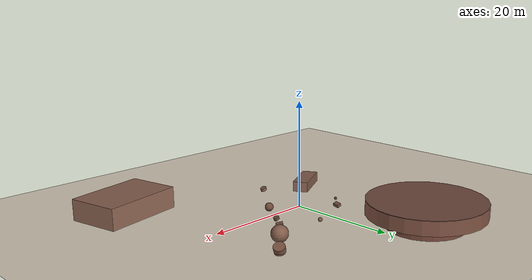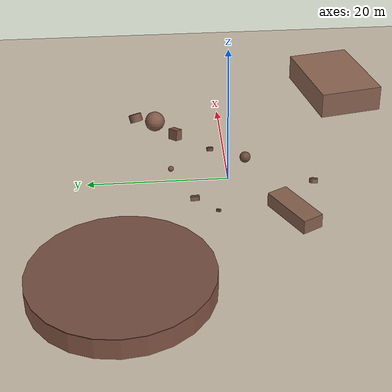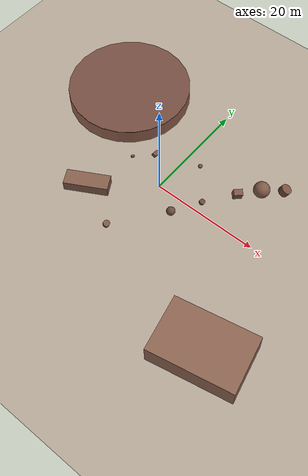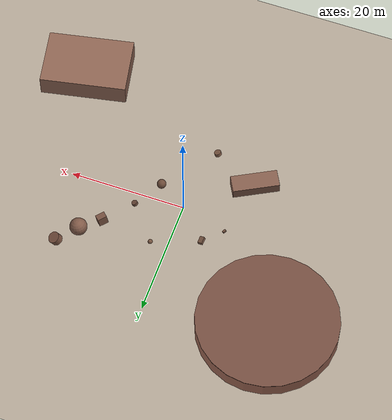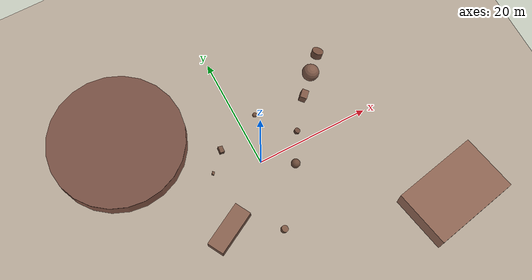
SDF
<?xml version="1.0" ?>
<sdf version="1.8">
  <world name="realistic_mars_terrain">

    <physics name="mars_physics" type="ignored">
      <max_step_size>0.001</max_step_size>
      <real_time_factor>1.0</real_time_factor>
    </physics>

    <plugin filename="libignition-gazebo-physics-system.so" name="ignition::gazebo::systems::Physics">
    </plugin>
    <plugin filename="libignition-gazebo-user-commands-system.so" name="ignition::gazebo::systems::UserCommands">
    </plugin>
    <plugin filename="libignition-gazebo-scene-broadcaster-system.so" name="ignition::gazebo::systems::SceneBroadcaster">
    </plugin>
    <plugin filename="libignition-gazebo-sensors-system.so" name="ignition::gazebo::systems::Sensors">
      <render_engine>ogre2</render_engine>
    </plugin>

    <!-- Mars gravity (38% of Earth's) -->
    <gravity>0 0 -3.71</gravity>

    <!-- Mars atmosphere and lighting -->
    <scene>
      <ambient>0.35 0.28 0.22 1.0</ambient>
      <background>0.85 0.65 0.45 1.0</background>
      <shadows>true</shadows>
    </scene>

    <!-- Mars sun -->
    <light type="directional" name="mars_sun">
      <cast_shadows>true</cast_shadows>
      <pose>40 20 30 0 0 0</pose>
      <diffuse>0.8 0.6 0.4 1</diffuse>
      <specular>0.3 0.2 0.1 1</specular>
      <attenuation>
        <range>1000</range>
        <constant>0.9</constant>
        <linear>0.01</linear>
        <quadratic>0.001</quadratic>
      </attenuation>
      <direction>-0.6 -0.2 -0.8</direction>
    </light>

    <!-- Ground plane with Mars texture -->
    <model name="mars_ground">
      <static>true</static>
      <link name="ground_link">
        <collision name="ground_collision">
          <geometry>
            <plane>
              <normal>0 0 1</normal>
              <size>200 200</size>
            </plane>
          </geometry>
          <surface>
            <friction>
              <ode>
                <mu>0.8</mu>
                <mu2>0.8</mu2>
              </ode>
            </friction>
          </surface>
        </collision>
        <visual name="ground_visual">
          <geometry>
            <plane>
              <normal>0 0 1</normal>
              <size>200 200</size>
            </plane>
          </geometry>
          <material>
            <ambient>0.5 0.32 0.25 1</ambient>
            <diffuse>0.6 0.38 0.3 1</diffuse>
            <specular>0.1 0.1 0.1 1</specular>
          </material>
        </visual>
      </link>
    </model>

    <!-- Large impact crater -->
    <model name="impact_crater">
      <pose>-20 15 -1.5 0 0 0</pose>
      <static>true</static>
      <link name="crater_rim">
        <collision name="crater_rim_collision">
          <geometry>
            <cylinder>
              <radius>12</radius>
              <length>3</length>
            </cylinder>
          </geometry>
        </collision>
        <visual name="crater_rim_visual">
          <geometry>
            <cylinder>
              <radius>12</radius>
              <length>3</length>
            </cylinder>
          </geometry>
          <material>
            <ambient>0.35 0.25 0.2 1</ambient>
            <diffuse>0.45 0.3 0.25 1</diffuse>
            <specular>0.05 0.05 0.05 1</specular>
          </material>
        </visual>
      </link>

      <!-- Crater center (deeper) -->
      <link name="crater_center">
        <pose>0 0 -2 0 0 0</pose>
        <collision name="crater_center_collision">
          <geometry>
            <cylinder>
              <radius>8</radius>
              <length>4</length>
            </cylinder>
          </geometry>
        </collision>
        <visual name="crater_center_visual">
          <geometry>
            <cylinder>
              <radius>8</radius>
              <length>4</length>
            </cylinder>
          </geometry>
          <material>
            <ambient>0.3 0.2 0.15 1</ambient>
            <diffuse>0.4 0.25 0.2 1</diffuse>
            <specular>0.02 0.02 0.02 1</specular>
          </material>
        </visual>
      </link>
    </model>

    <!-- Boulder field with various sized rocks -->
    <model name="boulder_field">
      <static>true</static>

      <!-- Large boulder -->
      <link name="large_boulder">
        <pose>15 10 1.5 0.1 0.2 0.3</pose>
        <collision name="large_boulder_collision">
          <geometry>
            <sphere>
              <radius>1.5</radius>
            </sphere>
          </geometry>
        </collision>
        <visual name="large_boulder_visual">
          <geometry>
            <sphere>
              <radius>1.5</radius>
            </sphere>
          </geometry>
          <material>
            <ambient>0.4 0.28 0.22 1</ambient>
            <diffuse>0.5 0.35 0.28 1</diffuse>
            <specular>0.15 0.1 0.1 1</specular>
          </material>
        </visual>
      </link>

      <!-- Medium boulders -->
      <link name="medium_boulder_1">
        <pose>12 7 0.8 0.2 0.1 0.8</pose>
        <collision name="medium_boulder_1_collision">
          <geometry>
            <box>
              <size>1.6 1.2 1.6</size>
            </box>
          </geometry>
        </collision>
        <visual name="medium_boulder_1_visual">
          <geometry>
            <box>
              <size>1.6 1.2 1.6</size>
            </box>
          </geometry>
          <material>
            <ambient>0.38 0.26 0.2 1</ambient>
            <diffuse>0.48 0.33 0.26 1</diffuse>
            <specular>0.12 0.08 0.08 1</specular>
          </material>
        </visual>
      </link>

      <link name="medium_boulder_2">
        <pose>18 13 0.6 0.3 0.4 1.2</pose>
        <collision name="medium_boulder_2_collision">
          <geometry>
            <cylinder>
              <radius>1.0</radius>
              <length>1.2</length>
            </cylinder>
          </geometry>
        </collision>
        <visual name="medium_boulder_2_visual">
          <geometry>
            <cylinder>
              <radius>1.0</radius>
              <length>1.2</length>
            </cylinder>
          </geometry>
          <material>
            <ambient>0.36 0.24 0.18 1</ambient>
            <diffuse>0.46 0.31 0.24 1</diffuse>
            <specular>0.1 0.1 0.1 1</specular>
          </material>
        </visual>
      </link>
    </model>

    <!-- Rocky outcrops -->
    <model name="rock_outcrop_1">
      <pose>-10 -8 1 0 0 0.5</pose>
      <static>true</static>
      <link name="outcrop_link">
        <collision name="outcrop_collision">
          <geometry>
            <box>
              <size>8 3 2</size>
            </box>
          </geometry>
        </collision>
        <visual name="outcrop_visual">
          <geometry>
            <box>
              <size>8 3 2</size>
            </box>
          </geometry>
          <material>
            <ambient>0.42 0.3 0.24 1</ambient>
            <diffuse>0.52 0.37 0.3 1</diffuse>
            <specular>0.1 0.1 0.1 1</specular>
          </material>
        </visual>
      </link>
    </model>

    <!-- Scattered navigation obstacles -->
    <model name="navigation_obstacles">
      <static>true</static>

      <link name="obstacle_1">
        <pose>5 -3 0.4 0.1 0.2 0.8</pose>
        <collision name="obstacle_1_collision">
          <geometry>
            <sphere>
              <radius>0.8</radius>
            </sphere>
          </geometry>
        </collision>
        <visual name="obstacle_1_visual">
          <geometry>
            <sphere>
              <radius>0.8</radius>
            </sphere>
          </geometry>
          <material>
            <ambient>0.32 0.22 0.16 1</ambient>
            <diffuse>0.42 0.29 0.22 1</diffuse>
            <specular>0.1 0.1 0.1 1</specular>
          </material>
        </visual>
      </link>

      <link name="obstacle_2">
        <pose>-5 5 0.3 0.3 0.1 1.5</pose>
        <collision name="obstacle_2_collision">
          <geometry>
            <box>
              <size>1.2 0.8 0.6</size>
            </box>
          </geometry>
        </collision>
        <visual name="obstacle_2_visual">
          <geometry>
            <box>
              <size>1.2 0.8 0.6</size>
            </box>
          </geometry>
          <material>
            <ambient>0.34 0.24 0.18 1</ambient>
            <diffuse>0.44 0.31 0.24 1</diffuse>
            <specular>0.1 0.1 0.1 1</specular>
          </material>
        </visual>
      </link>

      <link name="obstacle_3">
        <pose>8 2 0.25 0.2 0.3 0.6</pose>
        <collision name="obstacle_3_collision">
          <geometry>
            <cylinder>
              <radius>0.5</radius>
              <length>0.5</length>
            </cylinder>
          </geometry>
        </collision>
        <visual name="obstacle_3_visual">
          <geometry>
            <cylinder>
              <radius>0.5</radius>
              <length>0.5</length>
            </cylinder>
          </geometry>
          <material>
            <ambient>0.3 0.2 0.15 1</ambient>
            <diffuse>0.4 0.27 0.21 1</diffuse>
            <specular>0.1 0.1 0.1 1</specular>
          </material>
        </visual>
      </link>
    </model>

    <!-- Raised plateau -->
    <model name="plateau">
      <pose>25 -20 2 0 0 0.2</pose>
      <static>true</static>
      <link name="plateau_link">
        <collision name="plateau_collision">
          <geometry>
            <box>
              <size>15 10 4</size>
            </box>
          </geometry>
        </collision>
        <visual name="plateau_visual">
          <geometry>
            <box>
              <size>15 10 4</size>
            </box>
          </geometry>
          <material>
            <ambient>0.45 0.32 0.26 1</ambient>
            <diffuse>0.55 0.39 0.32 1</diffuse>
            <specular>0.1 0.1 0.1 1</specular>
          </material>
        </visual>
      </link>
    </model>

    <!-- Additional scattered rocks for navigation challenges -->
    <model name="scattered_rocks">
      <static>true</static>

      <link name="rock_1">
        <pose>3 8 0.2 0.1 0.2 0.5</pose>
        <collision name="rock_1_collision">
          <geometry>
            <sphere>
              <radius>0.4</radius>
            </sphere>
          </geometry>
        </collision>
        <visual name="rock_1_visual">
          <geometry>
            <sphere>
              <radius>0.4</radius>
            </sphere>
          </geometry>
          <material>
            <ambient>0.35 0.25 0.18 1</ambient>
            <diffuse>0.45 0.32 0.24 1</diffuse>
            <specular>0.1 0.1 0.1 1</specular>
          </material>
        </visual>
      </link>

      <link name="rock_2">
        <pose>-8 2 0.15 0.2 0.1 1.0</pose>
        <collision name="rock_2_collision">
          <geometry>
            <box>
              <size>0.6 0.4 0.3</size>
            </box>
          </geometry>
        </collision>
        <visual name="rock_2_visual">
          <geometry>
            <box>
              <size>0.6 0.4 0.3</size>
            </box>
          </geometry>
          <material>
            <ambient>0.33 0.23 0.17 1</ambient>
            <diffuse>0.43 0.3 0.23 1</diffuse>
            <specular>0.1 0.1 0.1 1</specular>
          </material>
        </visual>
      </link>

      <link name="rock_3">
        <pose>-2 -12 0.3 0.3 0.2 0.8</pose>
        <collision name="rock_3_collision">
          <geometry>
            <cylinder>
              <radius>0.6</radius>
              <length>0.6</length>
            </cylinder>
          </geometry>
        </collision>
        <visual name="rock_3_visual">
          <geometry>
            <cylinder>
              <radius>0.6</radius>
              <length>0.6</length>
            </cylinder>
          </geometry>
          <material>
            <ambient>0.37 0.26 0.19 1</ambient>
            <diffuse>0.47 0.33 0.25 1</diffuse>
            <specular>0.1 0.1 0.1 1</specular>
          </material>
        </visual>
      </link>
    </model>

  </world>
</sdf>
